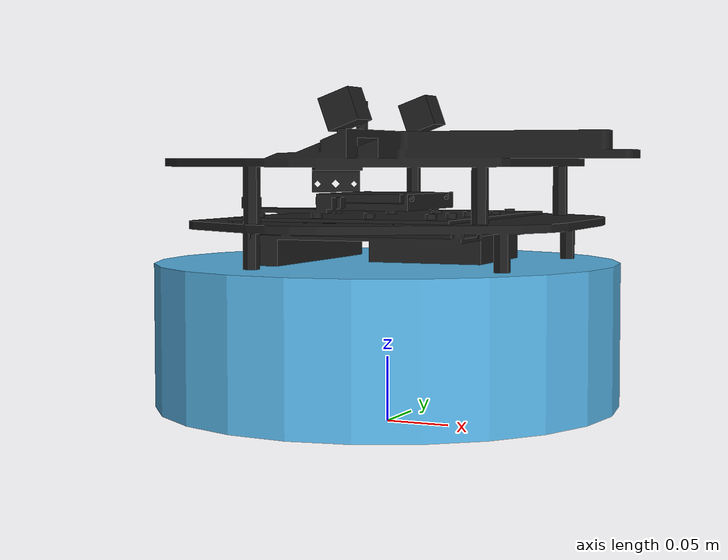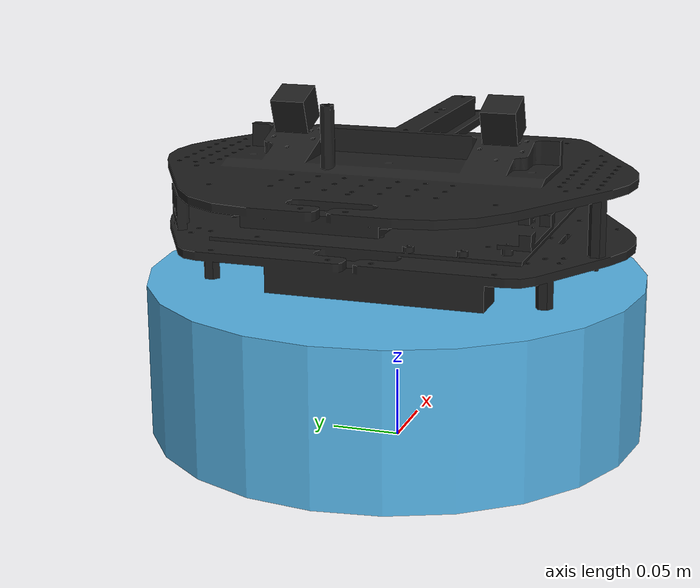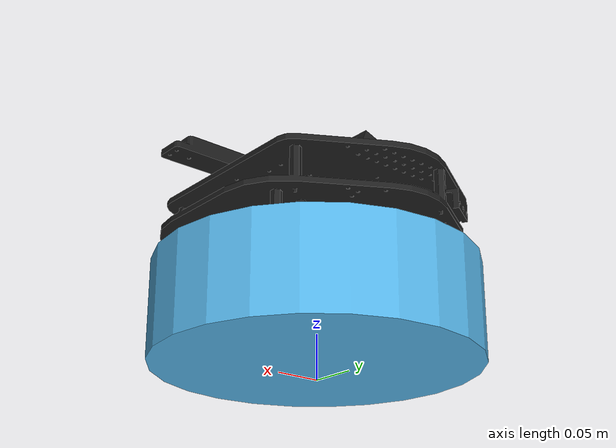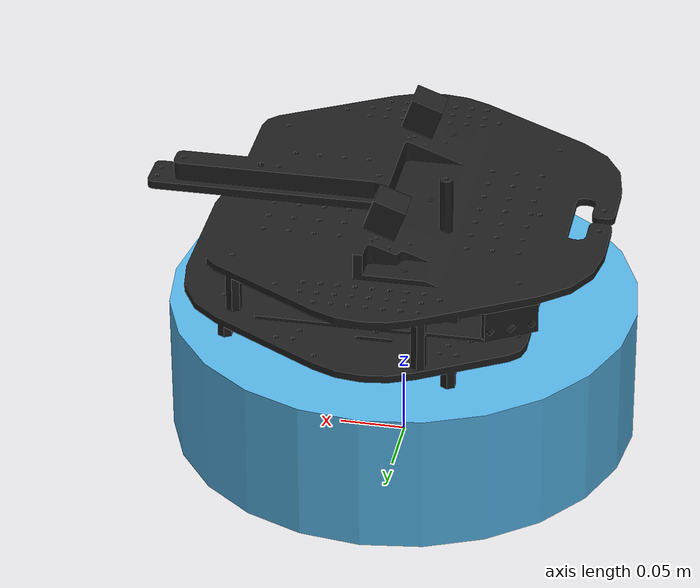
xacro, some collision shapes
<?xml version="1.0"?>
<robot name="kobuki_standalone"
       xmlns:sensor="http://playerstage.sourceforge.net/gazebo/xmlschema/#sensor"
       xmlns:controller="http://playerstage.sourceforge.net/gazebo/xmlschema/#controller"
       xmlns:interface="http://playerstage.sourceforge.net/gazebo/xmlschema/#interface"
       xmlns:xacro="http://ros.org/wiki/xacro">

	<!-- Defines the kobuki component tag. -->
	<xacro:include filename="$(find robot_descriptions)/UGV_n/urdf/hast_ugvn_kobuki.urdf.xacro" />

	<!-- directly define ugv namespace -->

	<!--  define ugv namespace by argument-->
	<xacro:arg name="ns_arg" default="ugv_n" />
	<xacro:kobuki_stereo X_ROBOT_NAMESPACE="$(arg ns_arg)"/>

</robot>

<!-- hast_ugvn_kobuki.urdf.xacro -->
<robot name="kobuki" xmlns:xacro="http://ros.org/wiki/xacro">
   <!-- Included Files -->
      <xacro:include filename="$(find robot_descriptions)/UGV_n/urdf/common_properties.urdf.xacro"/>
      <xacro:include filename="$(find robot_descriptions)/UGV_n/urdf/hast_ugvn_pgrstereo.urdf.xacro"/>
      <xacro:include filename="$(find robot_descriptions)/UGV_n/urdf/hast_ugvn_kobuki_gazebo.urdf.xacro"/>

   <xacro:macro name="kobuki_stereo" params="X_ROBOT_NAMESPACE">
      <!-- properties -->
         <xacro:property name="X_PI" value="3.1415926535897931" />
         <xacro:property name="X_RADIUS" value="0.02" />
         <xacro:property name="X_LENGTH" value="0.1" />
         <xacro:property name="camera_box" value="0.025" /> <!-- Size of square 'camera' box -->
         <xacro:property name="X_BASELINE" value="0.1524" /> <!-- Size of square 'camera' box -->
      <!-- Kobuki Hardware -->
         <link name="${X_ROBOT_NAMESPACE}/base_footprint"/>

         <joint name="${X_ROBOT_NAMESPACE}/base_joint" type="fixed">
            <origin xyz="0 0 0.0102" rpy="0 0 0" />
            <parent link="${X_ROBOT_NAMESPACE}/base_footprint"/>
            <child  link="${X_ROBOT_NAMESPACE}/base_link" />
         </joint>
         <link name="${X_ROBOT_NAMESPACE}/base_link">
            <visual>
             <geometry>
               <!-- new mesh -->
               <mesh filename="package://robot_descriptions/UGV_n/meshes/main_body.dae" />
             </geometry>
             <origin xyz="0.001 0 0.05199" rpy="0 0 0"/>
            </visual>
            <collision name="base">
             <geometry>
               <cylinder length="0.10938" radius="0.178"/>
             </geometry>
             <origin xyz="0.0 0 0.05949" rpy="0 0 0"/>
            </collision>
            <inertial>
             <mass value="2.4"/> <!-- 2.4/2.6 kg for small/big battery pack -->
             <origin xyz="0.01 0 0"/>
             <inertia ixx="0.019995" ixy="0.0" ixz="0.0" iyy="0.019995" iyz="0.0" izz="0.03675" />
            </inertial>
         </link>

         <joint name="${X_ROBOT_NAMESPACE}/wheel_left_joint" type="continuous">
            <parent link="${X_ROBOT_NAMESPACE}/base_link"/>
            <child link="${X_ROBOT_NAMESPACE}/wheel_left_link"/>
            <origin xyz="0.00 ${0.23/2} 0.0250" rpy="${-M_PI/2} 0 0"/>
            <axis xyz="0 0 1"/>
         </joint>
         <link name="${X_ROBOT_NAMESPACE}/wheel_left_link">
            <collision>
             <geometry>
               <cylinder length="0.0206" radius="0.0352"/>
             </geometry>
             <origin rpy="0 0 0" xyz="0 0 0"/>
            </collision>
            <inertial>
              <mass value="0.01" />
              <origin xyz="0 0 0" />
              <inertia ixx="0.001" ixy="0.0" ixz="0.0" iyy="0.001" iyz="0.0" izz="0.001" />
            </inertial>
         </link>

         <joint name="${X_ROBOT_NAMESPACE}/wheel_right_joint" type="continuous">
            <parent link="${X_ROBOT_NAMESPACE}/base_link"/>
            <child link="${X_ROBOT_NAMESPACE}/wheel_right_link"/>
            <origin xyz="0.00 -${0.23/2} 0.0250" rpy="${-M_PI/2} 0 0"/>
            <axis xyz="0 0 1"/>
         </joint>
         <link name="${X_ROBOT_NAMESPACE}/wheel_right_link">
            <collision>
             <geometry>
               <cylinder length="0.0206" radius="0.0350"/>
             </geometry>
             <origin rpy="0 0 0" xyz="0 0 0"/>
            </collision>
            <inertial>
              <mass value="0.01" />
              <origin xyz="0 0 0" />
              <inertia ixx="0.001" ixy="0.0" ixz="0.0" iyy="0.001" iyz="0.0" izz="0.001" />
            </inertial>
         </link>

         <joint name="${X_ROBOT_NAMESPACE}/caster_front_joint" type="fixed">
            <parent link="${X_ROBOT_NAMESPACE}/base_link"/>
            <child link="${X_ROBOT_NAMESPACE}/caster_front_link"/>
            <origin xyz="0.115 0.0 0.007" rpy="${-M_PI/2} 0 0"/>
         </joint>
         <link name="${X_ROBOT_NAMESPACE}/caster_front_link">
            <collision>
               <geometry>
               <cylinder length="0.0176" radius="0.017"/>
               </geometry>
               <origin rpy="0 0 0" xyz="0 0 0"/>
            </collision>
            <inertial>
               <mass value="0.01" />
               <origin xyz="0 0 0" />
               <inertia ixx="0.001" ixy="0.0" ixz="0.0" iyy="0.001" iyz="0.0" izz="0.001" />
            </inertial>
         </link>

         <joint name="${X_ROBOT_NAMESPACE}/caster_back_joint" type="fixed">
            <parent link="${X_ROBOT_NAMESPACE}/base_link"/>
            <child link="${X_ROBOT_NAMESPACE}/caster_back_link"/>
            <origin xyz="-0.135 0.0 0.009" rpy="${-M_PI/2} 0 0"/>
         </joint>
         <link name="${X_ROBOT_NAMESPACE}/caster_back_link">
            <collision>
            <geometry>
            <cylinder length="0.0176" radius="0.017"/>
            </geometry>
            <origin rpy="0 0 0" xyz="0 0 0"/>
            </collision>
            <inertial>
            <mass value="0.01" />
            <origin xyz="0 0 0" />
            <inertia ixx="0.001" ixy="0.0" ixz="0.0" iyy="0.001" iyz="0.0" izz="0.001" />
            </inertial>
         </link>

      <!-- PC and Camera support -->
         <joint name="${X_ROBOT_NAMESPACE}/frame_joint" type="fixed">
            <origin xyz="0 0 0.148" rpy="0 0 0" />
            <parent link="${X_ROBOT_NAMESPACE}/base_link"/>
            <child link="${X_ROBOT_NAMESPACE}/frame_link" />
         </joint>
         <link name="${X_ROBOT_NAMESPACE}/frame_link">
            <visual>
            <geometry>
            <mesh filename="package://robot_descriptions/UGV_n/meshes/hast_kobuki_frame_grey.dae" />
            </geometry>
            <origin xyz="0 0 0" rpy="0 0 0"/>
            <material name="black"/>
            </visual>
            <collision>
            <geometry>
            <cylinder length="0.10938" radius="0.176"/>
            </geometry>
            <origin xyz="0 0 0" rpy="0 0 0"/>
            </collision>
            <inertial>
            <mass value="0.1"/> <!-- 2.4/2.6 kg for small/big battery pack -->
            <origin xyz="0 0 0"/>
            <inertia ixx="0.0001" ixy="0.0" ixz="0.0" iyy="0.0001" iyz="0.0" izz="0.0001" />
            </inertial>
         </link>

      <!-- Camera Definitions -->
         <!-- camera center -->
         <joint name="${X_ROBOT_NAMESPACE}/stereo_center_joint" type="fixed">
            <origin xyz="-0.0014 0 0.0804" rpy="0 -${20*X_PI/180} 0" />
            <parent link="${X_ROBOT_NAMESPACE}/frame_link"/>
            <child link="${X_ROBOT_NAMESPACE}/stereo_center"/>
         </joint>
         <link name="${X_ROBOT_NAMESPACE}/stereo_center"/>

         <!-- left camera -->
         <joint name="${X_ROBOT_NAMESPACE}/left_camera_joint" type="fixed">
            <origin xyz="0 ${X_BASELINE/2} 0" rpy="0 0 0" />
            <parent link="${X_ROBOT_NAMESPACE}/stereo_center"/>
            <child link="${X_ROBOT_NAMESPACE}/stereo_left"/>
         </joint>
         <link name="${X_ROBOT_NAMESPACE}/stereo_left">
            <collision>
            <origin xyz="0 0 0" rpy="0 0 0"/>
            <geometry>
            <box size="${camera_box} ${camera_box} ${camera_box}"/>
            </geometry>
            </collision>
            <visual>
            <origin xyz="0 0 0" rpy="0 0 0"/>
            <geometry>
            <box size="${camera_box} ${camera_box} ${camera_box}"/>
            </geometry>
            <material name="black"/>
            </visual>
            <inertial>
            <mass value="1e-5" />
            <origin xyz="0 0 0" rpy="0 0 0"/>
            <inertia ixx="1e-6" ixy="0" ixz="0" iyy="1e-6" iyz="0" izz="1e-6" />
            </inertial>
         </link>

         <!-- right camera -->
         <joint name="${X_ROBOT_NAMESPACE}/right_camera_joint" type="fixed">
            <origin xyz="0 ${-X_BASELINE/2} 0" rpy="0 0 0" />
            <parent link="${X_ROBOT_NAMESPACE}/stereo_center"/>
            <child link="${X_ROBOT_NAMESPACE}/stereo_right"/>
         </joint>
         <link name="${X_ROBOT_NAMESPACE}/stereo_right">
            <collision>
            <origin xyz="0 0 0" rpy="0 0 0"/>
            <geometry>
            <box size="${camera_box} ${camera_box} ${camera_box}"/>
            </geometry>
            </collision>
            <visual>
            <origin xyz="0 0 0" rpy="0 0 0"/>
            <geometry>
            <box size="${camera_box} ${camera_box} ${camera_box}"/>
            </geometry>
            <material name="black"/>
            </visual>
            <inertial>
            <mass value="1e-5" />
            <origin xyz="0 0 0" rpy="0 0 0"/>
            <inertia ixx="1e-6" ixy="0" ixz="0" iyy="1e-6" iyz="0" izz="1e-6" />
            </inertial>
         </link>

      <!-- Kobuki's sensors -->
         <!-- gyro -->
         <joint name="${X_ROBOT_NAMESPACE}/gyro_joint" type="fixed">
            <axis xyz="0 1 0"/>
            <origin xyz="0.056 0.062 0.0202" rpy="0 0 0"/>
            <parent link="${X_ROBOT_NAMESPACE}/base_link"/>
            <child link="${X_ROBOT_NAMESPACE}/gyro_link"/>
         </joint>
         <link name="${X_ROBOT_NAMESPACE}/gyro_link">
            <inertial>
            <mass value="0.001"/>
            <origin xyz="0 0 0" rpy="0 0 0"/>
            <inertia ixx="0.0001" ixy="0" ixz="0" iyy="0.000001" iyz="0" izz="0.0001"/>
            </inertial>
         </link>

         <!-- cliff_sensor_left_joint -->
         <joint name="${X_ROBOT_NAMESPACE}/cliff_sensor_left_joint" type="fixed">
            <origin xyz="0.08734 0.13601 0.0214" rpy="0 ${M_PI/2} 0" />
            <parent link="${X_ROBOT_NAMESPACE}/base_link"/>
            <child link="${X_ROBOT_NAMESPACE}/cliff_sensor_left_link" />
         </joint>
         <link name="${X_ROBOT_NAMESPACE}/cliff_sensor_left_link">
            <inertial>
            <mass value="0.0001" />
            <origin xyz="0 0 0" />
            <inertia ixx="0.0001" ixy="0.0" ixz="0.0" iyy="0.0001" iyz="0.0" izz="0.0001" />
            </inertial>
         </link>

         <!-- cliff_sensor_right -->
         <joint name="${X_ROBOT_NAMESPACE}/cliff_sensor_right_joint" type="fixed">
            <origin xyz="0.085 -0.13601 0.0214" rpy="0 ${M_PI/2} 0" />
            <parent link="${X_ROBOT_NAMESPACE}/base_link"/>
            <child link="${X_ROBOT_NAMESPACE}/cliff_sensor_right_link" />
         </joint>
         <link name="${X_ROBOT_NAMESPACE}/cliff_sensor_right_link">
            <inertial>
            <mass value="0.0001" />
            <origin xyz="0 0 0" />
            <inertia ixx="0.0001" ixy="0.0" ixz="0.0" iyy="0.0001" iyz="0.0" izz="0.0001" />
            </inertial>
         </link>

         <!-- cliff_sensor_front -->
         <joint name="${X_ROBOT_NAMESPACE}/cliff_sensor_front_joint" type="fixed">
            <origin xyz="0.156 0.00 0.0214" rpy="0 ${M_PI/2} 0" />
            <parent link="${X_ROBOT_NAMESPACE}/base_link"/>
            <child link="${X_ROBOT_NAMESPACE}/cliff_sensor_front_link" />
         </joint>
         <link name="${X_ROBOT_NAMESPACE}/cliff_sensor_front_link">
            <inertial>
            <mass value="0.0001" />
            <origin xyz="0 0 0" />
            <inertia ixx="0.0001" ixy="0.0" ixz="0.0" iyy="0.0001" iyz="0.0" izz="0.0001" />
            </inertial>
         </link>

      <!-- pgr_setup -->
         <xacro:kobuki_pgr X_ROBOT_NAMESPACE="${X_ROBOT_NAMESPACE}" X_BASELINE="${X_BASELINE}"/>

      <!-- Kobuki Gazebo simulation details -->
         <xacro:kobuki_sim X_ROBOT_NAMESPACE="${X_ROBOT_NAMESPACE}"/>

   </xacro:macro>
</robot>
